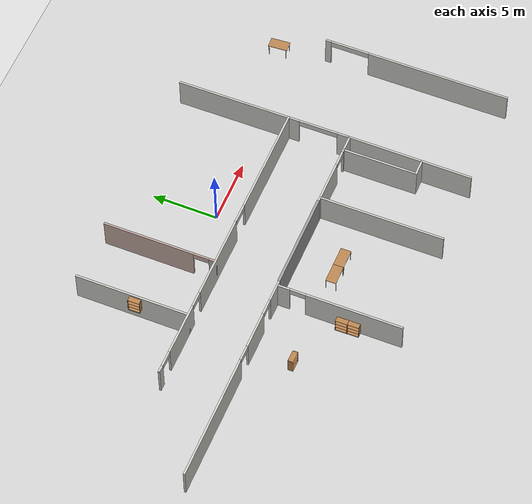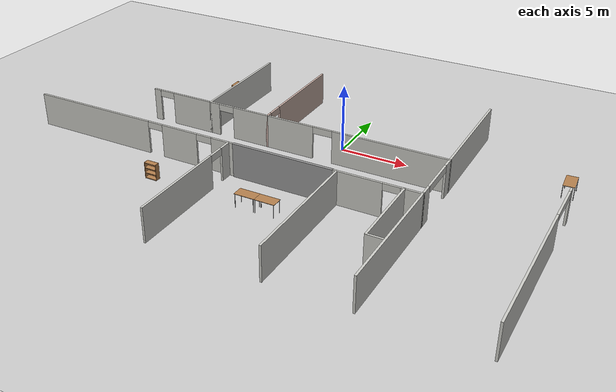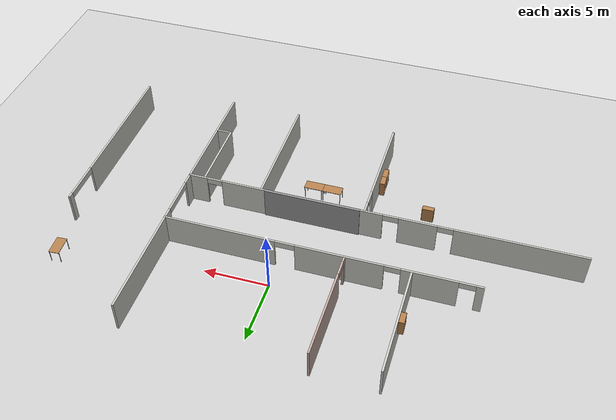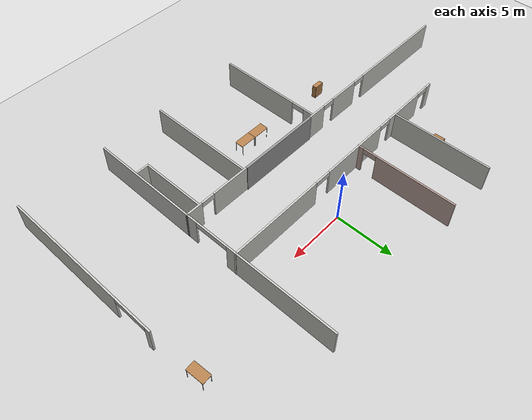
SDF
<sdf version="1.7">
 <world name="default">
  <model name="ground_plane">
   <static>1</static>
   <link name="link">
    <collision name="collision">
     <geometry><plane><normal>0 0 1</normal><size>100 100</size></plane></geometry>
     <surface><friction><ode><mu>100</mu><mu2>50</mu2></ode></friction></surface>
    </collision>
    <visual name="visual">
     <cast_shadows>0</cast_shadows>
     <geometry><plane><normal>0 0 1</normal><size>100 100</size></plane></geometry>
     <material>
      <script><uri>file://media/materials/scripts/gazebo.material</uri><name>Gazebo/Grey</name></script>
     </material>
    </visual>
   </link>
  </model>
  <model name="cps_lab_layout">
   <pose>-2.5615 -0.338224 0 0 -0 0</pose>
   <link name="Wall_182">
    <collision name="Wall_182_Collision">
     <geometry><box><size>5.75 0.15 2.5</size></box></geometry>
     <pose>0 0 1.25 0 -0 0</pose>
    </collision>
    <visual name="Wall_182_Visual">
     <pose>0 0 1.25 0 -0 0</pose>
     <geometry><box><size>5.75 0.15 2.5</size></box></geometry>
     <material>
      <script><uri>file://media/materials/scripts/gazebo.material</uri><name>Gazebo/CeilingTiled</name></script>
      <ambient>0.760784 0.662745 0.627451 1</ambient>
     </material>
     <meta><layer>0</layer></meta>
    </visual>
    <pose>10.0887 -9.49757 0 0 -0 -1.5708</pose>
   </link>
   <link name="Wall_183">
    <collision name="Wall_183_Collision">
     <geometry><box><size>1.25 0.15 2.5</size></box></geometry>
     <pose>0 0 1.25 0 -0 0</pose>
    </collision>
    <visual name="Wall_183_Visual">
     <pose>0 0 1.25 0 -0 0</pose>
     <geometry><box><size>1.25 0.15 2.5</size></box></geometry>
     <material>
      <script><uri>file://media/materials/scripts/gazebo.material</uri><name>Gazebo/CeilingTiled</name></script>
      <ambient>1 1 1 1</ambient>
     </material>
     <meta><layer>0</layer></meta>
    </visual>
    <pose>10.6387 -12.2976 0 0 -0 0</pose>
   </link>
   <link name="Wall_191">
    <pose>-0.494925 -1.79978 0 0 -0 0</pose>
    <visual name="Wall_191_Visual_0">
     <pose>-11.5937 0 1.25 0 -0 0</pose>
     <geometry><box><size>0.562682 0.15 2.5</size></box></geometry>
     <material>
      <script><uri>file://media/materials/scripts/gazebo.material</uri><name>Gazebo/CeilingTiled</name></script>
      <ambient>0.760784 0.662745 0.627451 1</ambient>
     </material>
     <meta><layer>0</layer></meta>
    </visual>
    <collision name="Wall_191_Collision_0">
     <geometry><box><size>0.562682 0.15 2.5</size></box></geometry>
     <pose>-11.5937 0 1.25 0 -0 0</pose>
    </collision>
    <visual name="Wall_191_Visual_1">
     <pose>-8.06045 0 1.25 0 -0 0</pose>
     <geometry><box><size>4.10373 0.15 2.5</size></box></geometry>
     <material>
      <script><uri>file://media/materials/scripts/gazebo.material</uri><name>Gazebo/CeilingTiled</name></script>
      <ambient>0.760784 0.662745 0.627451 1</ambient>
     </material>
     <meta><layer>0</layer></meta>
    </visual>
    <collision name="Wall_191_Collision_1">
     <geometry><box><size>4.10373 0.15 2.5</size></box></geometry>
     <pose>-8.06045 0 1.25 0 -0 0</pose>
    </collision>
    <visual name="Wall_191_Visual_2">
     <pose>-1.52906 0 1.25 0 -0 0</pose>
     <geometry><box><size>6.55907 0.15 2.5</size></box></geometry>
     <material>
      <script><uri>file://media/materials/scripts/gazebo.material</uri><name>Gazebo/CeilingTiled</name></script>
      <ambient>0.760784 0.662745 0.627451 1</ambient>
     </material>
     <meta><layer>0</layer></meta>
    </visual>
    <collision name="Wall_191_Collision_2">
     <geometry><box><size>6.55907 0.15 2.5</size></box></geometry>
     <pose>-1.52906 0 1.25 0 -0 0</pose>
    </collision>
    <visual name="Wall_191_Visual_3">
     <pose>7.56274 0 1.25 0 -0 0</pose>
     <geometry><box><size>8.62453 0.15 2.5</size></box></geometry>
     <material>
      <script><uri>file://media/materials/scripts/gazebo.material</uri><name>Gazebo/CeilingTiled</name></script>
      <ambient>0.760784 0.662745 0.627451 1</ambient>
     </material>
     <meta><layer>0</layer></meta>
    </visual>
    <collision name="Wall_191_Collision_3">
     <geometry><box><size>8.62453 0.15 2.5</size></box></geometry>
     <pose>7.56274 0 1.25 0 -0 0</pose>
    </collision>
    <visual name="Wall_191_Visual_4">
     <pose>-10.7123 0 2.25 0 -0 0</pose>
     <geometry><box><size>1.2 0.15 0.5</size></box></geometry>
     <material>
      <script><uri>file://media/materials/scripts/gazebo.material</uri><name>Gazebo/CeilingTiled</name></script>
      <ambient>0.760784 0.662745 0.627451 1</ambient>
     </material>
     <meta><layer>0</layer></meta>
    </visual>
    <collision name="Wall_191_Collision_4">
     <geometry><box><size>1.2 0.15 0.5</size></box></geometry>
     <pose>-10.7123 0 2.25 0 -0 0</pose>
    </collision>
    <visual name="Wall_191_Visual_5">
     <pose>-5.40859 0 2.25 0 -0 0</pose>
     <geometry><box><size>1.2 0.15 0.5</size></box></geometry>
     <material>
      <script><uri>file://media/materials/scripts/gazebo.material</uri><name>Gazebo/CeilingTiled</name></script>
      <ambient>0.760784 0.662745 0.627451 1</ambient>
     </material>
     <meta><layer>0</layer></meta>
    </visual>
    <collision name="Wall_191_Collision_5">
     <geometry><box><size>1.2 0.15 0.5</size></box></geometry>
     <pose>-5.40859 0 2.25 0 -0 0</pose>
    </collision>
    <visual name="Wall_191_Visual_6">
     <pose>2.50047 0 2.25 0 -0 0</pose>
     <geometry><box><size>1.5 0.15 0.5</size></box></geometry>
     <material>
      <script><uri>file://media/materials/scripts/gazebo.material</uri><name>Gazebo/CeilingTiled</name></script>
      <ambient>0.760784 0.662745 0.627451 1</ambient>
     </material>
     <meta><layer>0</layer></meta>
    </visual>
    <collision name="Wall_191_Collision_6">
     <geometry><box><size>1.5 0.15 0.5</size></box></geometry>
     <pose>2.50047 0 2.25 0 -0 0</pose>
    </collision>
   </link>
   <link name="Wall_76">
    <collision name="Wall_76_Collision">
     <geometry><box><size>9.63969 0.15 2.5</size></box></geometry>
     <pose>0 0 1.25 0 -0 0</pose>
    </collision>
    <visual name="Wall_76_Visual">
     <pose>0 0 1.25 0 -0 0</pose>
     <geometry><box><size>9.63969 0.15 2.5</size></box></geometry>
     <material>
      <script><uri>file://media/materials/scripts/gazebo.material</uri><name>Gazebo/CeilingTiled</name></script>
      <ambient>0.760784 0.662745 0.627451 1</ambient>
     </material>
     <meta><layer>0</layer></meta>
    </visual>
    <pose>11.2783 -11.3346 0 0 -0 -1.5757</pose>
   </link>
   <link name="Wall_77">
    <pose>19.0537 -8.88994 0 0 -0 1.5708</pose>
    <visual name="Wall_77_Visual_0">
     <pose>-1.72755 0 1.25 0 -0 0</pose>
     <geometry><box><size>11.0449 0.15 2.5</size></box></geometry>
     <material>
      <script><uri>file://media/materials/scripts/gazebo.material</uri><name>Gazebo/CeilingTiled</name></script>
      <ambient>0.760784 0.662745 0.627451 1</ambient>
     </material>
     <meta><layer>0</layer></meta>
    </visual>
    <collision name="Wall_77_Collision_0">
     <geometry><box><size>11.0449 0.15 2.5</size></box></geometry>
     <pose>-1.72755 0 1.25 0 -0 0</pose>
    </collision>
    <visual name="Wall_77_Visual_1">
     <pose>7.02245 0 1.25 0 -0 0</pose>
     <geometry><box><size>0.455102 0.15 2.5</size></box></geometry>
     <material>
      <script><uri>file://media/materials/scripts/gazebo.material</uri><name>Gazebo/CeilingTiled</name></script>
      <ambient>0.760784 0.662745 0.627451 1</ambient>
     </material>
     <meta><layer>0</layer></meta>
    </visual>
    <collision name="Wall_77_Collision_1">
     <geometry><box><size>0.455102 0.15 2.5</size></box></geometry>
     <pose>7.02245 0 1.25 0 -0 0</pose>
    </collision>
    <visual name="Wall_77_Visual_2">
     <pose>5.2949 0 2.25 0 -0 0</pose>
     <geometry><box><size>3 0.15 0.5</size></box></geometry>
     <material>
      <script><uri>file://media/materials/scripts/gazebo.material</uri><name>Gazebo/CeilingTiled</name></script>
      <ambient>0.760784 0.662745 0.627451 1</ambient>
     </material>
     <meta><layer>0</layer></meta>
    </visual>
    <collision name="Wall_77_Collision_2">
     <geometry><box><size>3 0.15 0.5</size></box></geometry>
     <pose>5.2949 0 2.25 0 -0 0</pose>
    </collision>
   </link>
   <link name="Wall_78">
    <pose>-3.8734 -6.63637 0 0 -0 3.14159</pose>
    <visual name="Wall_78_Visual_0">
     <pose>-14.4896 0 1.25 0 -0 0</pose>
     <geometry><box><size>1.52082 0.15 2.5</size></box></geometry>
     <material>
      <script><uri>file://media/materials/scripts/gazebo.material</uri><name>Gazebo/CeilingTiled</name></script>
      <ambient>0.760784 0.662745 0.627451 1</ambient>
     </material>
     <meta><layer>0</layer></meta>
    </visual>
    <collision name="Wall_78_Collision_0">
     <geometry><box><size>1.52082 0.15 2.5</size></box></geometry>
     <pose>-14.4896 0 1.25 0 -0 0</pose>
    </collision>
    <visual name="Wall_78_Visual_1">
     <pose>-6.18137 0 1.25 0 -0 0</pose>
     <geometry><box><size>12.6956 0.15 2.5</size></box></geometry>
     <material>
      <script><uri>file://media/materials/scripts/gazebo.material</uri><name>Gazebo/CeilingTiled</name></script>
      <ambient>0.760784 0.662745 0.627451 1</ambient>
     </material>
     <meta><layer>0</layer></meta>
    </visual>
    <collision name="Wall_78_Collision_1">
     <geometry><box><size>12.6956 0.15 2.5</size></box></geometry>
     <pose>-6.18137 0 1.25 0 -0 0</pose>
    </collision>
    <visual name="Wall_78_Visual_2">
     <pose>2.81725 0 1.25 0 -0 0</pose>
     <geometry><box><size>2.90164 0.15 2.5</size></box></geometry>
     <material>
      <script><uri>file://media/materials/scripts/gazebo.material</uri><name>Gazebo/CeilingTiled</name></script>
      <ambient>0.760784 0.662745 0.627451 1</ambient>
     </material>
     <meta><layer>0</layer></meta>
    </visual>
    <collision name="Wall_78_Collision_2">
     <geometry><box><size>2.90164 0.15 2.5</size></box></geometry>
     <pose>2.81725 0 1.25 0 -0 0</pose>
    </collision>
    <visual name="Wall_78_Visual_3">
     <pose>10.359 0 1.25 0 -0 0</pose>
     <geometry><box><size>9.78192 0.15 2.5</size></box></geometry>
     <material>
      <script><uri>file://media/materials/scripts/gazebo.material</uri><name>Gazebo/CeilingTiled</name></script>
      <ambient>0.760784 0.662745 0.627451 1</ambient>
     </material>
     <meta><layer>0</layer></meta>
    </visual>
    <collision name="Wall_78_Collision_3">
     <geometry><box><size>9.78192 0.15 2.5</size></box></geometry>
     <pose>10.359 0 1.25 0 -0 0</pose>
    </collision>
    <visual name="Wall_78_Visual_4">
     <pose>-13.1292 0 2.25 0 -0 0</pose>
     <geometry><box><size>1.2 0.15 0.5</size></box></geometry>
     <material>
      <script><uri>file://media/materials/scripts/gazebo.material</uri><name>Gazebo/CeilingTiled</name></script>
      <ambient>0.760784 0.662745 0.627451 1</ambient>
     </material>
     <meta><layer>0</layer></meta>
    </visual>
    <collision name="Wall_78_Collision_4">
     <geometry><box><size>1.2 0.15 0.5</size></box></geometry>
     <pose>-13.1292 0 2.25 0 -0 0</pose>
    </collision>
    <visual name="Wall_78_Visual_5">
     <pose>0.766434 0 2.25 0 -0 0</pose>
     <geometry><box><size>1.2 0.15 0.5</size></box></geometry>
     <material>
      <script><uri>file://media/materials/scripts/gazebo.material</uri><name>Gazebo/CeilingTiled</name></script>
      <ambient>0.760784 0.662745 0.627451 1</ambient>
     </material>
     <meta><layer>0</layer></meta>
    </visual>
    <collision name="Wall_78_Collision_5">
     <geometry><box><size>1.2 0.15 0.5</size></box></geometry>
     <pose>0.766434 0 2.25 0 -0 0</pose>
    </collision>
    <visual name="Wall_78_Visual_6">
     <pose>4.86808 0 2.25 0 -0 0</pose>
     <geometry><box><size>1.2 0.15 0.5</size></box></geometry>
     <material>
      <script><uri>file://media/materials/scripts/gazebo.material</uri><name>Gazebo/CeilingTiled</name></script>
      <ambient>0.760784 0.662745 0.627451 1</ambient>
     </material>
     <meta><layer>0</layer></meta>
    </visual>
    <collision name="Wall_78_Collision_6">
     <geometry><box><size>1.2 0.15 0.5</size></box></geometry>
     <pose>4.86808 0 2.25 0 -0 0</pose>
    </collision>
   </link>
   <link name="Wall_80">
    <collision name="Wall_80_Collision">
     <geometry><box><size>9.5 0.15 2.5</size></box></geometry>
     <pose>0 0 1.25 0 -0 0</pose>
    </collision>
    <visual name="Wall_80_Visual">
     <pose>0 0 1.25 0 -0 0</pose>
     <geometry><box><size>9.5 0.15 2.5</size></box></geometry>
     <material>
      <script><uri>file://media/materials/scripts/gazebo.material</uri><name>Gazebo/CeilingTiled</name></script>
      <ambient>0.760784 0.662745 0.627451 1</ambient>
     </material>
     <meta><layer>0</layer></meta>
    </visual>
    <pose>5.48031 -11.4153 0 0 -0 1.5708</pose>
   </link>
   <link name="Wall_83">
    <pose>-2.64934 -11.4153 0 0 -0 -1.5708</pose>
    <visual name="Wall_83_Visual_0">
     <pose>-4.27752 0 1.25 0 -0 0</pose>
     <geometry><box><size>0.944957 0.15 2.5</size></box></geometry>
     <material>
      <script><uri>file://media/materials/scripts/gazebo.material</uri><name>Gazebo/CeilingTiled</name></script>
      <ambient>0.760784 0.662745 0.627451 1</ambient>
     </material>
     <meta><layer>0</layer></meta>
    </visual>
    <collision name="Wall_83_Collision_0">
     <geometry><box><size>0.944957 0.15 2.5</size></box></geometry>
     <pose>-4.27752 0 1.25 0 -0 0</pose>
    </collision>
    <visual name="Wall_83_Visual_1">
     <pose>1.07248 0 1.25 0 -0 0</pose>
     <geometry><box><size>7.35504 0.15 2.5</size></box></geometry>
     <material>
      <script><uri>file://media/materials/scripts/gazebo.material</uri><name>Gazebo/CeilingTiled</name></script>
      <ambient>0.760784 0.662745 0.627451 1</ambient>
     </material>
     <meta><layer>0</layer></meta>
    </visual>
    <collision name="Wall_83_Collision_1">
     <geometry><box><size>7.35504 0.15 2.5</size></box></geometry>
     <pose>1.07248 0 1.25 0 -0 0</pose>
    </collision>
    <visual name="Wall_83_Visual_2">
     <pose>-3.20504 0 2.25 0 -0 0</pose>
     <geometry><box><size>1.2 0.15 0.5</size></box></geometry>
     <material>
      <script><uri>file://media/materials/scripts/gazebo.material</uri><name>Gazebo/CeilingTiled</name></script>
      <ambient>0.760784 0.662745 0.627451 1</ambient>
     </material>
     <meta><layer>0</layer></meta>
    </visual>
    <collision name="Wall_83_Collision_2">
     <geometry><box><size>1.2 0.15 0.5</size></box></geometry>
     <pose>-3.20504 0 2.25 0 -0 0</pose>
    </collision>
   </link>
   <link name="Wall_91">
    <pose>11.2783 0.140367 0 0 -0 1.57425</pose>
    <visual name="Wall_91_Visual_0">
     <pose>-6.30077 0 1.25 0 -0 0</pose>
     <geometry><box><size>1.00896 0.15 2.5</size></box></geometry>
     <material>
      <script><uri>file://media/materials/scripts/gazebo.material</uri><name>Gazebo/CeilingTiled</name></script>
      <ambient>0.760784 0.662745 0.627451 1</ambient>
     </material>
     <meta><layer>0</layer></meta>
    </visual>
    <collision name="Wall_91_Collision_0">
     <geometry><box><size>1.00896 0.15 2.5</size></box></geometry>
     <pose>-6.30077 0 1.25 0 -0 0</pose>
    </collision>
    <visual name="Wall_91_Visual_1">
     <pose>2.00448 0 1.25 0 -0 0</pose>
     <geometry><box><size>9.60155 0.15 2.5</size></box></geometry>
     <material>
      <script><uri>file://media/materials/scripts/gazebo.material</uri><name>Gazebo/CeilingTiled</name></script>
      <ambient>0.760784 0.662745 0.627451 1</ambient>
     </material>
     <meta><layer>0</layer></meta>
    </visual>
    <collision name="Wall_91_Collision_1">
     <geometry><box><size>9.60155 0.15 2.5</size></box></geometry>
     <pose>2.00448 0 1.25 0 -0 0</pose>
    </collision>
    <visual name="Wall_91_Visual_2">
     <pose>-4.29629 0 2.25 0 -0 0</pose>
     <geometry><box><size>3 0.15 0.5</size></box></geometry>
     <material>
      <script><uri>file://media/materials/scripts/gazebo.material</uri><name>Gazebo/CeilingTiled</name></script>
      <ambient>0.760784 0.662745 0.627451 1</ambient>
     </material>
     <meta><layer>0</layer></meta>
    </visual>
    <collision name="Wall_91_Collision_2">
     <geometry><box><size>3 0.15 0.5</size></box></geometry>
     <pose>-4.29629 0 2.25 0 -0 0</pose>
    </collision>
   </link>
   <link name="Wall_95">
    <pose>-2.44492 2.50022 0 0 -0 -1.5708</pose>
    <visual name="Wall_95_Visual_0">
     <pose>-0.878799 0 1.25 0 -0 0</pose>
     <geometry><box><size>6.9924 0.15 2.5</size></box></geometry>
     <material>
      <script><uri>file://media/materials/scripts/gazebo.material</uri><name>Gazebo/Grey</name></script>
      <ambient>0.760784 0.662745 0.627451 1</ambient>
     </material>
     <meta><layer>0</layer></meta>
    </visual>
    <collision name="Wall_95_Collision_0">
     <geometry><box><size>6.9924 0.15 2.5</size></box></geometry>
     <pose>-0.878799 0 1.25 0 -0 0</pose>
    </collision>
    <visual name="Wall_95_Visual_1">
     <pose>4.0962 0 1.25 0 -0 0</pose>
     <geometry><box><size>0.557598 0.15 2.5</size></box></geometry>
     <material>
      <script><uri>file://media/materials/scripts/gazebo.material</uri><name>Gazebo/Grey</name></script>
      <ambient>0.760784 0.662745 0.627451 1</ambient>
     </material>
     <meta><layer>0</layer></meta>
    </visual>
    <collision name="Wall_95_Collision_1">
     <geometry><box><size>0.557598 0.15 2.5</size></box></geometry>
     <pose>4.0962 0 1.25 0 -0 0</pose>
    </collision>
    <visual name="Wall_95_Visual_2">
     <pose>3.2174 0 2.25 0 -0 0</pose>
     <geometry><box><size>1.2 0.15 0.5</size></box></geometry>
     <material>
      <script><uri>file://media/materials/scripts/gazebo.material</uri><name>Gazebo/Grey</name></script>
      <ambient>0.760784 0.662745 0.627451 1</ambient>
     </material>
     <meta><layer>0</layer></meta>
    </visual>
    <collision name="Wall_95_Collision_2">
     <geometry><box><size>1.2 0.15 0.5</size></box></geometry>
     <pose>3.2174 0 2.25 0 -0 0</pose>
    </collision>
   </link>
   <link name="Wall_97">
    <collision name="Wall_97_Collision">
     <geometry><box><size>8.75 0.15 2.5</size></box></geometry>
     <pose>0 0 1.25 0 -0 0</pose>
    </collision>
    <visual name="Wall_97_Visual">
     <pose>0 0 1.25 0 -0 0</pose>
     <geometry><box><size>8.75 0.15 2.5</size></box></geometry>
     <material>
      <script><uri>file://media/materials/scripts/gazebo.material</uri><name>Gazebo/CeilingTiled</name></script>
      <ambient>0.760784 0.662745 0.627451 1</ambient>
     </material>
     <meta><layer>0</layer></meta>
    </visual>
    <pose>-7.29493 2.50022 0 0 -0 1.5708</pose>
   </link>
   <static>1</static>
  </model>
  <model name="Bookshelf">
   <static>1</static>
   <link name="link">
    <inertial><mass>1</mass></inertial>
    <collision name="back">
     <pose>0 0.005 0.6 0 -0 0</pose>
     <geometry><box><size>0.9 0.01 1.2</size></box></geometry>
    </collision>
    <visual name="visual1">
     <pose>0 0.005 0.6 0 -0 0</pose>
     <geometry><box><size>0.9 0.01 1.2</size></box></geometry>
     <material>
      <diffuse>1 1 1 1</diffuse>
      <script><uri>file://media/materials/scripts/gazebo.material</uri><name>Gazebo/Wood</name></script>
      <pbr>
       <metal>
        <albedo_map>https://fuel.gazebosim.org/1.0/openrobotics/models/bookshelf/4/files/bookshelf_diffuse.jpg</albedo_map>
       </metal>
      </pbr>
     </material>
    </visual>
    <collision name="left_side">
     <pose>0.45 -0.195 0.6 0 -0 0</pose>
     <geometry><box><size>0.02 0.4 1.2</size></box></geometry>
    </collision>
    <visual name="visual2">
     <pose>0.45 -0.195 0.6 0 -0 0</pose>
     <geometry><box><size>0.02 0.4 1.2</size></box></geometry>
     <material>
      <diffuse>1 1 1 1</diffuse>
      <script><uri>file://media/materials/scripts/gazebo.material</uri><name>Gazebo/Wood</name></script>
      <pbr>
       <metal>
        <albedo_map>https://fuel.gazebosim.org/1.0/openrobotics/models/bookshelf/4/files/bookshelf_diffuse.jpg</albedo_map>
       </metal>
      </pbr>
     </material>
    </visual>
    <collision name="right_side">
     <pose>-0.45 -0.195 0.6 0 -0 0</pose>
     <geometry><box><size>0.02 0.4 1.2</size></box></geometry>
    </collision>
    <visual name="visual3">
     <pose>-0.45 -0.195 0.6 0 -0 0</pose>
     <geometry><box><size>0.02 0.4 1.2</size></box></geometry>
     <material>
      <diffuse>1 1 1 1</diffuse>
      <script><uri>file://media/materials/scripts/gazebo.material</uri><name>Gazebo/Wood</name></script>
      <pbr>
       <metal>
        <albedo_map>https://fuel.gazebosim.org/1.0/openrobotics/models/bookshelf/4/files/bookshelf_diffuse.jpg</albedo_map>
       </metal>
      </pbr>
     </material>
    </visual>
    <collision name="bottom">
     <pose>0 -0.195 0.03 0 -0 0</pose>
     <geometry><box><size>0.88 0.4 0.06</size></box></geometry>
    </collision>
    <visual name="visual4">
     <pose>0 -0.195 0.03 0 -0 0</pose>
     <geometry><box><size>0.88 0.4 0.06</size></box></geometry>
     <material>
      <diffuse>1 1 1 1</diffuse>
      <script><uri>file://media/materials/scripts/gazebo.material</uri><name>Gazebo/Wood</name></script>
      <pbr>
       <metal>
        <albedo_map>https://fuel.gazebosim.org/1.0/openrobotics/models/bookshelf/4/files/bookshelf_diffuse.jpg</albedo_map>
       </metal>
      </pbr>
     </material>
    </visual>
    <collision name="top">
     <pose>0 -0.195 1.19 0 -0 0</pose>
     <geometry><box><size>0.88 0.4 0.02</size></box></geometry>
    </collision>
    <visual name="visual5">
     <pose>0 -0.195 1.19 0 -0 0</pose>
     <geometry><box><size>0.88 0.4 0.02</size></box></geometry>
     <material>
      <diffuse>1 1 1 1</diffuse>
      <script><uri>file://media/materials/scripts/gazebo.material</uri><name>Gazebo/Wood</name></script>
      <pbr>
       <metal>
        <albedo_map>https://fuel.gazebosim.org/1.0/openrobotics/models/bookshelf/4/files/bookshelf_diffuse.jpg</albedo_map>
       </metal>
      </pbr>
     </material>
    </visual>
    <collision name="low_shelf">
     <pose>0 -0.195 0.43 0 -0 0</pose>
     <geometry><box><size>0.88 0.4 0.02</size></box></geometry>
    </collision>
    <visual name="visual6">
     <pose>0 -0.195 0.43 0 -0 0</pose>
     <geometry><box><size>0.88 0.4 0.02</size></box></geometry>
     <material>
      <diffuse>1 1 1 1</diffuse>
      <script><uri>file://media/materials/scripts/gazebo.material</uri><name>Gazebo/Wood</name></script>
      <pbr>
       <metal>
        <albedo_map>https://fuel.gazebosim.org/1.0/openrobotics/models/bookshelf/4/files/bookshelf_diffuse.jpg</albedo_map>
       </metal>
      </pbr>
     </material>
    </visual>
    <collision name="high_shelf">
     <pose>0 -0.195 0.8 0 -0 0</pose>
     <geometry><box><size>0.88 0.4 0.02</size></box></geometry>
    </collision>
    <visual name="visual7">
     <pose>0 -0.195 0.8 0 -0 0</pose>
     <geometry><box><size>0.88 0.4 0.02</size></box></geometry>
     <material>
      <diffuse>1 1 1 1</diffuse>
      <script><uri>file://media/materials/scripts/gazebo.material</uri><name>Gazebo/Wood</name></script>
      <pbr>
       <metal>
        <albedo_map>https://fuel.gazebosim.org/1.0/openrobotics/models/bookshelf/4/files/bookshelf_diffuse.jpg</albedo_map>
       </metal>
      </pbr>
     </material>
    </visual>
   </link>
   <pose>-9.54666 -9.75582 0 0 -0 0</pose>
  </model>
  <model name="Bookshelf_0">
   <static>1</static>
   <link name="link">
    <inertial><mass>1</mass></inertial>
    <collision name="back">
     <pose>0 0.005 0.6 0 -0 0</pose>
     <geometry><box><size>0.9 0.01 1.2</size></box></geometry>
    </collision>
    <visual name="visual1">
     <pose>0 0.005 0.6 0 -0 0</pose>
     <geometry><box><size>0.9 0.01 1.2</size></box></geometry>
     <material>
      <diffuse>1 1 1 1</diffuse>
      <script><uri>file://media/materials/scripts/gazebo.material</uri><name>Gazebo/Wood</name></script>
      <pbr>
       <metal>
        <albedo_map>https://fuel.gazebosim.org/1.0/openrobotics/models/bookshelf/4/files/bookshelf_diffuse.jpg</albedo_map>
       </metal>
      </pbr>
     </material>
    </visual>
    <collision name="left_side">
     <pose>0.45 -0.195 0.6 0 -0 0</pose>
     <geometry><box><size>0.02 0.4 1.2</size></box></geometry>
    </collision>
    <visual name="visual2">
     <pose>0.45 -0.195 0.6 0 -0 0</pose>
     <geometry><box><size>0.02 0.4 1.2</size></box></geometry>
     <material>
      <diffuse>1 1 1 1</diffuse>
      <script><uri>file://media/materials/scripts/gazebo.material</uri><name>Gazebo/Wood</name></script>
      <pbr>
       <metal>
        <albedo_map>https://fuel.gazebosim.org/1.0/openrobotics/models/bookshelf/4/files/bookshelf_diffuse.jpg</albedo_map>
       </metal>
      </pbr>
     </material>
    </visual>
    <collision name="right_side">
     <pose>-0.45 -0.195 0.6 0 -0 0</pose>
     <geometry><box><size>0.02 0.4 1.2</size></box></geometry>
    </collision>
    <visual name="visual3">
     <pose>-0.45 -0.195 0.6 0 -0 0</pose>
     <geometry><box><size>0.02 0.4 1.2</size></box></geometry>
     <material>
      <diffuse>1 1 1 1</diffuse>
      <script><uri>file://media/materials/scripts/gazebo.material</uri><name>Gazebo/Wood</name></script>
      <pbr>
       <metal>
        <albedo_map>https://fuel.gazebosim.org/1.0/openrobotics/models/bookshelf/4/files/bookshelf_diffuse.jpg</albedo_map>
       </metal>
      </pbr>
     </material>
    </visual>
    <collision name="bottom">
     <pose>0 -0.195 0.03 0 -0 0</pose>
     <geometry><box><size>0.88 0.4 0.06</size></box></geometry>
    </collision>
    <visual name="visual4">
     <pose>0 -0.195 0.03 0 -0 0</pose>
     <geometry><box><size>0.88 0.4 0.06</size></box></geometry>
     <material>
      <diffuse>1 1 1 1</diffuse>
      <script><uri>file://media/materials/scripts/gazebo.material</uri><name>Gazebo/Wood</name></script>
      <pbr>
       <metal>
        <albedo_map>https://fuel.gazebosim.org/1.0/openrobotics/models/bookshelf/4/files/bookshelf_diffuse.jpg</albedo_map>
       </metal>
      </pbr>
     </material>
    </visual>
    <collision name="top">
     <pose>0 -0.195 1.19 0 -0 0</pose>
     <geometry><box><size>0.88 0.4 0.02</size></box></geometry>
    </collision>
    <visual name="visual5">
     <pose>0 -0.195 1.19 0 -0 0</pose>
     <geometry><box><size>0.88 0.4 0.02</size></box></geometry>
     <material>
      <diffuse>1 1 1 1</diffuse>
      <script><uri>file://media/materials/scripts/gazebo.material</uri><name>Gazebo/Wood</name></script>
      <pbr>
       <metal>
        <albedo_map>https://fuel.gazebosim.org/1.0/openrobotics/models/bookshelf/4/files/bookshelf_diffuse.jpg</albedo_map>
       </metal>
      </pbr>
     </material>
    </visual>
    <collision name="low_shelf">
     <pose>0 -0.195 0.43 0 -0 0</pose>
     <geometry><box><size>0.88 0.4 0.02</size></box></geometry>
    </collision>
    <visual name="visual6">
     <pose>0 -0.195 0.43 0 -0 0</pose>
     <geometry><box><size>0.88 0.4 0.02</size></box></geometry>
     <material>
      <diffuse>1 1 1 1</diffuse>
      <script><uri>file://media/materials/scripts/gazebo.material</uri><name>Gazebo/Wood</name></script>
      <pbr>
       <metal>
        <albedo_map>https://fuel.gazebosim.org/1.0/openrobotics/models/bookshelf/4/files/bookshelf_diffuse.jpg</albedo_map>
       </metal>
      </pbr>
     </material>
    </visual>
    <collision name="high_shelf">
     <pose>0 -0.195 0.8 0 -0 0</pose>
     <geometry><box><size>0.88 0.4 0.02</size></box></geometry>
    </collision>
    <visual name="visual7">
     <pose>0 -0.195 0.8 0 -0 0</pose>
     <geometry><box><size>0.88 0.4 0.02</size></box></geometry>
     <material>
      <diffuse>1 1 1 1</diffuse>
      <script><uri>file://media/materials/scripts/gazebo.material</uri><name>Gazebo/Wood</name></script>
      <pbr>
       <metal>
        <albedo_map>https://fuel.gazebosim.org/1.0/openrobotics/models/bookshelf/4/files/bookshelf_diffuse.jpg</albedo_map>
       </metal>
      </pbr>
     </material>
    </visual>
   </link>
   <pose>-5.27649 -12.913 0 0 0 -1.55424</pose>
  </model>
  <model name="Table_clone">
   <static>1</static>
   <link name="link">
    <collision name="surface">
     <pose>0 0 1 0 -0 0</pose>
     <geometry><box><size>1.5 0.8 0.03</size></box></geometry>
     <surface><friction><ode><mu>0.6</mu><mu2>0.6</mu2></ode></friction></surface>
    </collision>
    <visual name="visual1">
     <pose>0 0 1 0 -0 0</pose>
     <geometry><box><size>1.5 0.8 0.03</size></box></geometry>
     <material>
      <diffuse>1 1 1 1</diffuse>
      <script><uri>file://media/materials/scripts/gazebo.material</uri><name>Gazebo/Wood</name></script>
      <pbr>
       <metal>
        <albedo_map>https://fuel.ignitionrobotics.org/1.0/openrobotics/models/table/4/files/Table_Diffuse.jpg</albedo_map>
       </metal>
      </pbr>
     </material>
    </visual>
    <collision name="front_left_leg">
     <pose>0.68 0.38 0.5 0 -0 0</pose>
     <geometry><cylinder><radius>0.02</radius><length>1</length></cylinder></geometry>
    </collision>
    <visual name="front_left_leg">
     <pose>0.68 0.38 0.5 0 -0 0</pose>
     <geometry><cylinder><radius>0.02</radius><length>1</length></cylinder></geometry>
     <material>
      <diffuse>0.5 0.5 0.5 1</diffuse>
      <script><uri>file://media/materials/scripts/gazebo.material</uri><name>Gazebo/Grey</name></script>
     </material>
    </visual>
    <collision name="front_right_leg">
     <pose>0.68 -0.38 0.5 0 -0 0</pose>
     <geometry><cylinder><radius>0.02</radius><length>1</length></cylinder></geometry>
    </collision>
    <visual name="front_right_leg">
     <pose>0.68 -0.38 0.5 0 -0 0</pose>
     <geometry><cylinder><radius>0.02</radius><length>1</length></cylinder></geometry>
     <material>
      <diffuse>0.5 0.5 0.5 1</diffuse>
      <script><uri>file://media/materials/scripts/gazebo.material</uri><name>Gazebo/Grey</name></script>
     </material>
    </visual>
    <collision name="back_right_leg">
     <pose>-0.68 -0.38 0.5 0 -0 0</pose>
     <geometry><cylinder><radius>0.02</radius><length>1</length></cylinder></geometry>
    </collision>
    <visual name="back_right_leg">
     <pose>-0.68 -0.38 0.5 0 -0 0</pose>
     <geometry><cylinder><radius>0.02</radius><length>1</length></cylinder></geometry>
     <material>
      <diffuse>0.5 0.5 0.5 1</diffuse>
      <script><uri>file://media/materials/scripts/gazebo.material</uri><name>Gazebo/Grey</name></script>
     </material>
    </visual>
    <collision name="back_left_leg">
     <pose>-0.68 0.38 0.5 0 -0 0</pose>
     <geometry><cylinder><radius>0.02</radius><length>1</length></cylinder></geometry>
    </collision>
    <visual name="back_left_leg">
     <pose>-0.68 0.38 0.5 0 -0 0</pose>
     <geometry><cylinder><radius>0.02</radius><length>1</length></cylinder></geometry>
     <material>
      <diffuse>0.5 0.5 0.5 1</diffuse>
      <script><uri>file://media/materials/scripts/gazebo.material</uri><name>Gazebo/Grey</name></script>
     </material>
    </visual>
   </link>
   <pose>-0.426344 -10.0482 0 0 -0 0</pose>
  </model>
  <model name="Table_clone_0">
   <static>1</static>
   <link name="link">
    <collision name="surface">
     <pose>0 0 1 0 -0 0</pose>
     <geometry><box><size>1.5 0.8 0.03</size></box></geometry>
     <surface><friction><ode><mu>0.6</mu><mu2>0.6</mu2></ode></friction></surface>
    </collision>
    <visual name="visual1">
     <pose>0 0 1 0 -0 0</pose>
     <geometry><box><size>1.5 0.8 0.03</size></box></geometry>
     <material>
      <diffuse>1 1 1 1</diffuse>
      <script><uri>file://media/materials/scripts/gazebo.material</uri><name>Gazebo/Wood</name></script>
      <pbr>
       <metal>
        <albedo_map>https://fuel.ignitionrobotics.org/1.0/openrobotics/models/table/4/files/Table_Diffuse.jpg</albedo_map>
       </metal>
      </pbr>
     </material>
    </visual>
    <collision name="front_left_leg">
     <pose>0.68 0.38 0.5 0 -0 0</pose>
     <geometry><cylinder><radius>0.02</radius><length>1</length></cylinder></geometry>
    </collision>
    <visual name="front_left_leg">
     <pose>0.68 0.38 0.5 0 -0 0</pose>
     <geometry><cylinder><radius>0.02</radius><length>1</length></cylinder></geometry>
     <material>
      <diffuse>0.5 0.5 0.5 1</diffuse>
      <script><uri>file://media/materials/scripts/gazebo.material</uri><name>Gazebo/Grey</name></script>
     </material>
    </visual>
    <collision name="front_right_leg">
     <pose>0.68 -0.38 0.5 0 -0 0</pose>
     <geometry><cylinder><radius>0.02</radius><length>1</length></cylinder></geometry>
    </collision>
    <visual name="front_right_leg">
     <pose>0.68 -0.38 0.5 0 -0 0</pose>
     <geometry><cylinder><radius>0.02</radius><length>1</length></cylinder></geometry>
     <material>
      <diffuse>0.5 0.5 0.5 1</diffuse>
      <script><uri>file://media/materials/scripts/gazebo.material</uri><name>Gazebo/Grey</name></script>
     </material>
    </visual>
    <collision name="back_right_leg">
     <pose>-0.68 -0.38 0.5 0 -0 0</pose>
     <geometry><cylinder><radius>0.02</radius><length>1</length></cylinder></geometry>
    </collision>
    <visual name="back_right_leg">
     <pose>-0.68 -0.38 0.5 0 -0 0</pose>
     <geometry><cylinder><radius>0.02</radius><length>1</length></cylinder></geometry>
     <material>
      <diffuse>0.5 0.5 0.5 1</diffuse>
      <script><uri>file://media/materials/scripts/gazebo.material</uri><name>Gazebo/Grey</name></script>
     </material>
    </visual>
    <collision name="back_left_leg">
     <pose>-0.68 0.38 0.5 0 -0 0</pose>
     <geometry><cylinder><radius>0.02</radius><length>1</length></cylinder></geometry>
    </collision>
    <visual name="back_left_leg">
     <pose>-0.68 0.38 0.5 0 -0 0</pose>
     <geometry><cylinder><radius>0.02</radius><length>1</length></cylinder></geometry>
     <material>
      <diffuse>0.5 0.5 0.5 1</diffuse>
      <script><uri>file://media/materials/scripts/gazebo.material</uri><name>Gazebo/Grey</name></script>
     </material>
    </visual>
   </link>
   <pose>-1.91052 -10.0459 0 0 -0 0</pose>
  </model>
  <model name="Bookshelf_0_clone">
   <static>1</static>
   <link name="link">
    <inertial><mass>1</mass></inertial>
    <collision name="back">
     <pose>0 0.005 0.6 0 -0 0</pose>
     <geometry><box><size>0.9 0.01 1.2</size></box></geometry>
    </collision>
    <visual name="visual1">
     <pose>0 0.005 0.6 0 -0 0</pose>
     <geometry><box><size>0.9 0.01 1.2</size></box></geometry>
     <material>
      <diffuse>1 1 1 1</diffuse>
      <script><uri>file://media/materials/scripts/gazebo.material</uri><name>Gazebo/Wood</name></script>
      <pbr>
       <metal>
        <albedo_map>https://fuel.gazebosim.org/1.0/openrobotics/models/bookshelf/4/files/bookshelf_diffuse.jpg</albedo_map>
       </metal>
      </pbr>
     </material>
    </visual>
    <collision name="left_side">
     <pose>0.45 -0.195 0.6 0 -0 0</pose>
     <geometry><box><size>0.02 0.4 1.2</size></box></geometry>
    </collision>
    <visual name="visual2">
     <pose>0.45 -0.195 0.6 0 -0 0</pose>
     <geometry><box><size>0.02 0.4 1.2</size></box></geometry>
     <material>
      <diffuse>1 1 1 1</diffuse>
      <script><uri>file://media/materials/scripts/gazebo.material</uri><name>Gazebo/Wood</name></script>
      <pbr>
       <metal>
        <albedo_map>https://fuel.gazebosim.org/1.0/openrobotics/models/bookshelf/4/files/bookshelf_diffuse.jpg</albedo_map>
       </metal>
      </pbr>
     </material>
    </visual>
    <collision name="right_side">
     <pose>-0.45 -0.195 0.6 0 -0 0</pose>
     <geometry><box><size>0.02 0.4 1.2</size></box></geometry>
    </collision>
    <visual name="visual3">
     <pose>-0.45 -0.195 0.6 0 -0 0</pose>
     <geometry><box><size>0.02 0.4 1.2</size></box></geometry>
     <material>
      <diffuse>1 1 1 1</diffuse>
      <script><uri>file://media/materials/scripts/gazebo.material</uri><name>Gazebo/Wood</name></script>
      <pbr>
       <metal>
        <albedo_map>https://fuel.gazebosim.org/1.0/openrobotics/models/bookshelf/4/files/bookshelf_diffuse.jpg</albedo_map>
       </metal>
      </pbr>
     </material>
    </visual>
    <collision name="bottom">
     <pose>0 -0.195 0.03 0 -0 0</pose>
     <geometry><box><size>0.88 0.4 0.06</size></box></geometry>
    </collision>
    <visual name="visual4">
     <pose>0 -0.195 0.03 0 -0 0</pose>
     <geometry><box><size>0.88 0.4 0.06</size></box></geometry>
     <material>
      <diffuse>1 1 1 1</diffuse>
      <script><uri>file://media/materials/scripts/gazebo.material</uri><name>Gazebo/Wood</name></script>
      <pbr>
       <metal>
        <albedo_map>https://fuel.gazebosim.org/1.0/openrobotics/models/bookshelf/4/files/bookshelf_diffuse.jpg</albedo_map>
       </metal>
      </pbr>
     </material>
    </visual>
    <collision name="top">
     <pose>0 -0.195 1.19 0 -0 0</pose>
     <geometry><box><size>0.88 0.4 0.02</size></box></geometry>
    </collision>
    <visual name="visual5">
     <pose>0 -0.195 1.19 0 -0 0</pose>
     <geometry><box><size>0.88 0.4 0.02</size></box></geometry>
     <material>
      <diffuse>1 1 1 1</diffuse>
      <script><uri>file://media/materials/scripts/gazebo.material</uri><name>Gazebo/Wood</name></script>
      <pbr>
       <metal>
        <albedo_map>https://fuel.gazebosim.org/1.0/openrobotics/models/bookshelf/4/files/bookshelf_diffuse.jpg</albedo_map>
       </metal>
      </pbr>
     </material>
    </visual>
    <collision name="low_shelf">
     <pose>0 -0.195 0.43 0 -0 0</pose>
     <geometry><box><size>0.88 0.4 0.02</size></box></geometry>
    </collision>
    <visual name="visual6">
     <pose>0 -0.195 0.43 0 -0 0</pose>
     <geometry><box><size>0.88 0.4 0.02</size></box></geometry>
     <material>
      <diffuse>1 1 1 1</diffuse>
      <script><uri>file://media/materials/scripts/gazebo.material</uri><name>Gazebo/Wood</name></script>
      <pbr>
       <metal>
        <albedo_map>https://fuel.gazebosim.org/1.0/openrobotics/models/bookshelf/4/files/bookshelf_diffuse.jpg</albedo_map>
       </metal>
      </pbr>
     </material>
    </visual>
    <collision name="high_shelf">
     <pose>0 -0.195 0.8 0 -0 0</pose>
     <geometry><box><size>0.88 0.4 0.02</size></box></geometry>
    </collision>
    <visual name="visual7">
     <pose>0 -0.195 0.8 0 -0 0</pose>
     <geometry><box><size>0.88 0.4 0.02</size></box></geometry>
     <material>
      <diffuse>1 1 1 1</diffuse>
      <script><uri>file://media/materials/scripts/gazebo.material</uri><name>Gazebo/Wood</name></script>
      <pbr>
       <metal>
        <albedo_map>https://fuel.gazebosim.org/1.0/openrobotics/models/bookshelf/4/files/bookshelf_diffuse.jpg</albedo_map>
       </metal>
      </pbr>
     </material>
    </visual>
   </link>
   <pose>-5.29905 -12.044 0 0 0 -1.55424</pose>
  </model>
  <model name="grey_wall">
   <static>1</static>
   <link name="link">
    <pose>0 0 1.4 0 -0 0</pose>
    <collision name="collision"><geometry><box><size>7.5 0.2 2.8</size></box></geometry></collision>
    <visual name="visual">
     <cast_shadows>0</cast_shadows>
     <geometry><box><size>7.5 0.2 2.8</size></box></geometry>
     <material>
      <script>
       <uri>model://grey_wall/materials/scripts</uri>
       <uri>model://grey_wall/materials/textures</uri>
       <name>vrc/grey_wall</name>
      </script>
     </material>
    </visual>
   </link>
   <pose>-1.11428 -6.95306 -0.297263 0 -0 0</pose>
  </model>
  <model name="Bookshelf_0_clone_clone_4_clone_clone_3_clone_1">
   <static>1</static>
   <link name="link">
    <inertial><mass>1</mass></inertial>
    <collision name="back">
     <pose>0 0.005 0.6 0 -0 0</pose>
     <geometry><box><size>0.9 0.01 1.2</size></box></geometry>
    </collision>
    <visual name="visual1">
     <pose>0 0.005 0.6 0 -0 0</pose>
     <geometry><box><size>0.9 0.01 1.2</size></box></geometry>
     <material>
      <diffuse>1 1 1 1</diffuse>
      <script><uri>file://media/materials/scripts/gazebo.material</uri><name>Gazebo/Wood</name></script>
      <pbr>
       <metal>
        <albedo_map>https://fuel.gazebosim.org/1.0/openrobotics/models/bookshelf/4/files/bookshelf_diffuse.jpg</albedo_map>
       </metal>
      </pbr>
     </material>
    </visual>
    <collision name="left_side">
     <pose>0.45 -0.195 0.6 0 -0 0</pose>
     <geometry><box><size>0.02 0.4 1.2</size></box></geometry>
    </collision>
    <visual name="visual2">
     <pose>0.45 -0.195 0.6 0 -0 0</pose>
     <geometry><box><size>0.02 0.4 1.2</size></box></geometry>
     <material>
      <diffuse>1 1 1 1</diffuse>
      <script><uri>file://media/materials/scripts/gazebo.material</uri><name>Gazebo/Wood</name></script>
      <pbr>
       <metal>
        <albedo_map>https://fuel.gazebosim.org/1.0/openrobotics/models/bookshelf/4/files/bookshelf_diffuse.jpg</albedo_map>
       </metal>
      </pbr>
     </material>
    </visual>
    <collision name="right_side">
     <pose>-0.45 -0.195 0.6 0 -0 0</pose>
     <geometry><box><size>0.02 0.4 1.2</size></box></geometry>
    </collision>
    <visual name="visual3">
     <pose>-0.45 -0.195 0.6 0 -0 0</pose>
     <geometry><box><size>0.02 0.4 1.2</size></box></geometry>
     <material>
      <diffuse>1 1 1 1</diffuse>
      <script><uri>file://media/materials/scripts/gazebo.material</uri><name>Gazebo/Wood</name></script>
      <pbr>
       <metal>
        <albedo_map>https://fuel.gazebosim.org/1.0/openrobotics/models/bookshelf/4/files/bookshelf_diffuse.jpg</albedo_map>
       </metal>
      </pbr>
     </material>
    </visual>
    <collision name="bottom">
     <pose>0 -0.195 0.03 0 -0 0</pose>
     <geometry><box><size>0.88 0.4 0.06</size></box></geometry>
    </collision>
    <visual name="visual4">
     <pose>0 -0.195 0.03 0 -0 0</pose>
     <geometry><box><size>0.88 0.4 0.06</size></box></geometry>
     <material>
      <diffuse>1 1 1 1</diffuse>
      <script><uri>file://media/materials/scripts/gazebo.material</uri><name>Gazebo/Wood</name></script>
      <pbr>
       <metal>
        <albedo_map>https://fuel.gazebosim.org/1.0/openrobotics/models/bookshelf/4/files/bookshelf_diffuse.jpg</albedo_map>
       </metal>
      </pbr>
     </material>
    </visual>
    <collision name="top">
     <pose>0 -0.195 1.19 0 -0 0</pose>
     <geometry><box><size>0.88 0.4 0.02</size></box></geometry>
    </collision>
    <visual name="visual5">
     <pose>0 -0.195 1.19 0 -0 0</pose>
     <geometry><box><size>0.88 0.4 0.02</size></box></geometry>
     <material>
      <diffuse>1 1 1 1</diffuse>
      <script><uri>file://media/materials/scripts/gazebo.material</uri><name>Gazebo/Wood</name></script>
      <pbr>
       <metal>
        <albedo_map>https://fuel.gazebosim.org/1.0/openrobotics/models/bookshelf/4/files/bookshelf_diffuse.jpg</albedo_map>
       </metal>
      </pbr>
     </material>
    </visual>
    <collision name="low_shelf">
     <pose>0 -0.195 0.43 0 -0 0</pose>
     <geometry><box><size>0.88 0.4 0.02</size></box></geometry>
    </collision>
    <visual name="visual6">
     <pose>0 -0.195 0.43 0 -0 0</pose>
     <geometry><box><size>0.88 0.4 0.02</size></box></geometry>
     <material>
      <diffuse>1 1 1 1</diffuse>
      <script><uri>file://media/materials/scripts/gazebo.material</uri><name>Gazebo/Wood</name></script>
      <pbr>
       <metal>
        <albedo_map>https://fuel.gazebosim.org/1.0/openrobotics/models/bookshelf/4/files/bookshelf_diffuse.jpg</albedo_map>
       </metal>
      </pbr>
     </material>
    </visual>
    <collision name="high_shelf">
     <pose>0 -0.195 0.8 0 -0 0</pose>
     <geometry><box><size>0.88 0.4 0.02</size></box></geometry>
    </collision>
    <visual name="visual7">
     <pose>0 -0.195 0.8 0 -0 0</pose>
     <geometry><box><size>0.88 0.4 0.02</size></box></geometry>
     <material>
      <diffuse>1 1 1 1</diffuse>
      <script><uri>file://media/materials/scripts/gazebo.material</uri><name>Gazebo/Wood</name></script>
      <pbr>
       <metal>
        <albedo_map>https://fuel.gazebosim.org/1.0/openrobotics/models/bookshelf/4/files/bookshelf_diffuse.jpg</albedo_map>
       </metal>
      </pbr>
     </material>
    </visual>
   </link>
   <pose>-9.92188 1.88207 1.15542 0 0 -1.55424</pose>
  </model>
  <model name="Table_clone_0_clone_clone_clone_1_clone">
   <static>1</static>
   <link name="link">
    <collision name="surface">
     <pose>0 0 1 0 -0 0</pose>
     <geometry><box><size>1.5 0.8 0.03</size></box></geometry>
     <surface><friction><ode><mu>0.6</mu><mu2>0.6</mu2></ode></friction></surface>
    </collision>
    <visual name="visual1">
     <pose>0 0 1 0 -0 0</pose>
     <geometry><box><size>1.5 0.8 0.03</size></box></geometry>
     <material>
      <diffuse>1 1 1 1</diffuse>
      <script><uri>file://media/materials/scripts/gazebo.material</uri><name>Gazebo/Wood</name></script>
      <pbr>
       <metal>
        <albedo_map>https://fuel.ignitionrobotics.org/1.0/openrobotics/models/table/4/files/Table_Diffuse.jpg</albedo_map>
       </metal>
      </pbr>
     </material>
    </visual>
    <collision name="front_left_leg">
     <pose>0.68 0.38 0.5 0 -0 0</pose>
     <geometry><cylinder><radius>0.02</radius><length>1</length></cylinder></geometry>
    </collision>
    <visual name="front_left_leg">
     <pose>0.68 0.38 0.5 0 -0 0</pose>
     <geometry><cylinder><radius>0.02</radius><length>1</length></cylinder></geometry>
     <material>
      <diffuse>0.5 0.5 0.5 1</diffuse>
      <script><uri>file://media/materials/scripts/gazebo.material</uri><name>Gazebo/Grey</name></script>
     </material>
    </visual>
    <collision name="front_right_leg">
     <pose>0.68 -0.38 0.5 0 -0 0</pose>
     <geometry><cylinder><radius>0.02</radius><length>1</length></cylinder></geometry>
    </collision>
    <visual name="front_right_leg">
     <pose>0.68 -0.38 0.5 0 -0 0</pose>
     <geometry><cylinder><radius>0.02</radius><length>1</length></cylinder></geometry>
     <material>
      <diffuse>0.5 0.5 0.5 1</diffuse>
      <script><uri>file://media/materials/scripts/gazebo.material</uri><name>Gazebo/Grey</name></script>
     </material>
    </visual>
    <collision name="back_right_leg">
     <pose>-0.68 -0.38 0.5 0 -0 0</pose>
     <geometry><cylinder><radius>0.02</radius><length>1</length></cylinder></geometry>
    </collision>
    <visual name="back_right_leg">
     <pose>-0.68 -0.38 0.5 0 -0 0</pose>
     <geometry><cylinder><radius>0.02</radius><length>1</length></cylinder></geometry>
     <material>
      <diffuse>0.5 0.5 0.5 1</diffuse>
      <script><uri>file://media/materials/scripts/gazebo.material</uri><name>Gazebo/Grey</name></script>
     </material>
    </visual>
    <collision name="back_left_leg">
     <pose>-0.68 0.38 0.5 0 -0 0</pose>
     <geometry><cylinder><radius>0.02</radius><length>1</length></cylinder></geometry>
    </collision>
    <visual name="back_left_leg">
     <pose>-0.68 0.38 0.5 0 -0 0</pose>
     <geometry><cylinder><radius>0.02</radius><length>1</length></cylinder></geometry>
     <material>
      <diffuse>0.5 0.5 0.5 1</diffuse>
      <script><uri>file://media/materials/scripts/gazebo.material</uri><name>Gazebo/Grey</name></script>
     </material>
    </visual>
   </link>
   <pose>15.8576 1.56553 -0.03218 0 -0 1.63313</pose>
  </model>
 </world>
</sdf>
